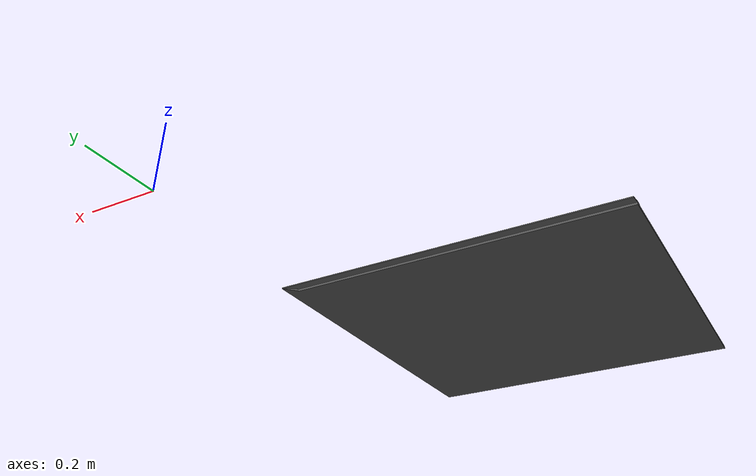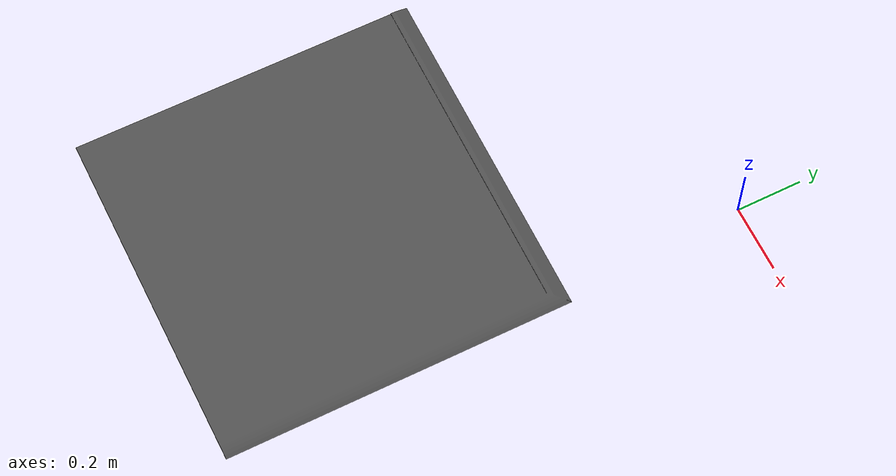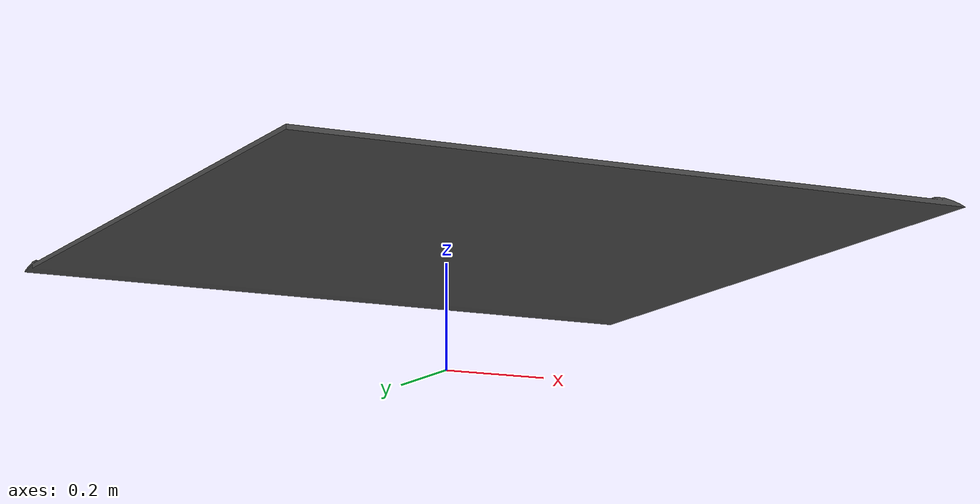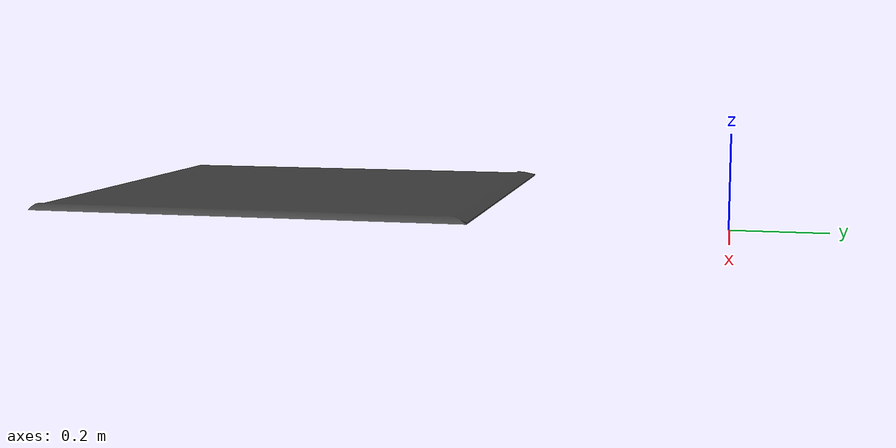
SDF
<?xml version='1.0'?>
<sdf version='1.6'>
  <model name='test_room_object_obstacle_board'>
    <link name='link_test_room_object_obstacle_board'>
      <pose frame=''>0 0 0 0 0 0</pose>
      <gravity>0</gravity>
      <self_collide>0</self_collide>
      <kinematic>0</kinematic>
      <visual name='visual'>
        <pose frame=''>0 0 0 0 0 0</pose>
        <geometry>
          <mesh>
            <uri>model://test_room_object_obstacle_board/meshes/test_room_object_obstacle_board.stl</uri>
            <scale>1 1 1</scale>
          </mesh>
        </geometry>
        <material>
          <lighting>1</lighting>
          <script>
            <uri>file://media/materials/scripts/gazebo.material</uri>
            <name>Gazebo/DarkGrey</name>
          </script>
        </material>
        <cast_shadows>1</cast_shadows>
        <transparency>0</transparency>
      </visual>
      <collision name='collision'>
        <laser_retro>15.0</laser_retro>
        <max_contacts>10</max_contacts>
        <pose frame=''>0 0 0 0 0 0</pose>
        <geometry>
          <mesh>
            <uri>model://test_room_object_obstacle_board/meshes/test_room_object_obstacle_board.stl</uri>
          </mesh>
        </geometry>
      </collision>
    </link>
    <static>1</static>
  </model>
</sdf>
